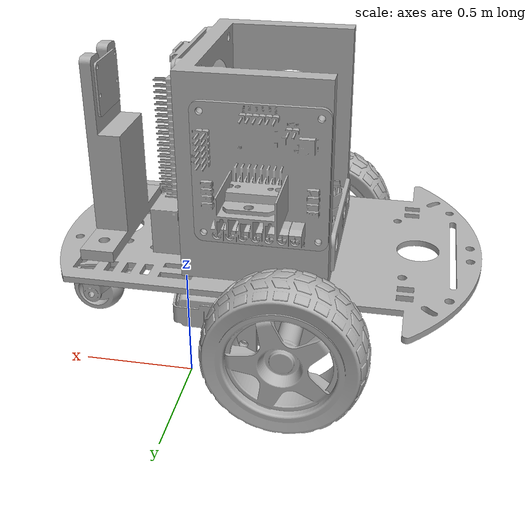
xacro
<?xml version="1.0" ?>
<robot name="car_scale" xmlns:xacro="http://www.ros.org/wiki/xacro">

<xacro:include filename="$(find car_scale_description)/urdf/camera.xacro" />
<xacro:include filename="$(find car_scale_description)/urdf/car_footprint.xacro" />

<xacro:include filename="$(find car_scale_description)/urdf/materials.xacro" />
<xacro:include filename="$(find car_scale_description)/urdf/car_scale.trans" />
<xacro:include filename="$(find car_scale_description)/urdf/car_scale.gazebo" />
<link name="base_link">
  <inertial>
    <origin xyz="-0.3184486651094718 -0.37399381910301716 0.489307364258473" rpy="0 0 0"/>
    <mass value="391.443910992165"/>
    <inertia ixx="36.186873" iyy="96.457366" izz="131.154404" ixy="0.011967" iyz="-0.000188" ixz="0.179255"/>
  </inertial>
  <visual>
    <origin xyz="0 0 0" rpy="0 0 0"/>
    <geometry>
      <mesh filename="file://$(find car_scale_description)/meshes/base_link.stl" scale="0.001 0.001 0.001"/>
    </geometry>
    <material name="silver"/>
  </visual>
  <collision>
    <origin xyz="0 0 0" rpy="0 0 0"/>
    <geometry>
      <mesh filename="file://$(find car_scale_description)/meshes/base_link.stl" scale="0.001 0.001 0.001"/>
    </geometry>
  </collision>
</link>

<link name="base_caster_wheel_1">
  <inertial>
    <origin xyz="-0.11974983374766845 0.14974959040375585 -0.09189950362871724" rpy="0 0 0"/>
    <mass value="14.187470062292778"/>
    <inertia ixx="0.211235" iyy="0.158995" izz="0.33893" ixy="-0.0" iyz="0.0" ixz="-0.0"/>
  </inertial>
  <visual>
    <origin xyz="-0.573077 0.524042 -0.48515" rpy="0 0 0"/>
    <geometry>
      <mesh filename="file://$(find car_scale_description)/meshes/base_caster_wheel_1.stl" scale="0.001 0.001 0.001"/>
    </geometry>
    <material name="silver"/>
  </visual>
  <collision>
    <origin xyz="-0.573077 0.524042 -0.48515" rpy="0 0 0"/>
    <geometry>
      <mesh filename="file://$(find car_scale_description)/meshes/base_caster_wheel_1.stl" scale="0.001 0.001 0.001"/>
    </geometry>
  </collision>
</link>

<link name="middle_caster_wheel_1">
  <inertial>
    <origin xyz="0.0453328380277514 -0.0038973655470143087 -0.07254094379655307" rpy="0 0 0"/>
    <mass value="20.651952587197"/>
    <inertia ixx="0.249149" iyy="0.239992" izz="0.254538" ixy="0.006006" iyz="-0.010258" ixz="0.064877"/>
  </inertial>
  <visual>
    <origin xyz="-0.453327 0.374292 -0.366286" rpy="0 0 0"/>
    <geometry>
      <mesh filename="file://$(find car_scale_description)/meshes/middle_caster_wheel_1.stl" scale="0.001 0.001 0.001"/>
    </geometry>
    <material name="silver"/>
  </visual>
  <collision>
    <origin xyz="-0.453327 0.374292 -0.366286" rpy="0 0 0"/>
    <geometry>
      <mesh filename="file://$(find car_scale_description)/meshes/middle_caster_wheel_1.stl" scale="0.001 0.001 0.001"/>
    </geometry>
  </collision>
</link>

<link name="caster_wheel_1">
  <inertial>
    <origin xyz="-0.005510579030893359 -0.078807714226935 -4.4950142805144644e-07" rpy="0 0 0"/>
    <mass value="3.826079549761852"/>
    <inertia ixx="0.02062" iyy="0.032621" izz="0.020561" ixy="0.000843" iyz="0.0" ixz="0.0"/>
  </inertial>
  <visual>
    <origin xyz="-0.573327 0.289655 -0.166286" rpy="0 0 0"/>
    <geometry>
      <mesh filename="file://$(find car_scale_description)/meshes/caster_wheel_1.stl" scale="0.001 0.001 0.001"/>
    </geometry>
    <material name="silver"/>
  </visual>
  <collision>
    <origin xyz="-0.573327 0.289655 -0.166286" rpy="0 0 0"/>
    <geometry>
      <mesh filename="file://$(find car_scale_description)/meshes/caster_wheel_1.stl" scale="0.001 0.001 0.001"/>
    </geometry>
  </collision>
</link>

<link name="motor_left_1">
  <inertial>
    <origin xyz="0.15579240284676796 0.08553540953199217 0.08475974994155999" rpy="0 0 0"/>
    <mass value="58.91169692781864"/>
    <inertia ixx="0.286332" iyy="0.864358" izz="0.811524" ixy="0.012933" iyz="-6.2e-05" ixz="0.003276"/>
  </inertial>
  <visual>
    <origin xyz="0.271923 0.097042 -0.263872" rpy="0 0 0"/>
    <geometry>
      <mesh filename="file://$(find car_scale_description)/meshes/motor_left_1.stl" scale="0.001 0.001 0.001"/>
    </geometry>
    <material name="silver"/>
  </visual>
  <collision>
    <origin xyz="0.271923 0.097042 -0.263872" rpy="0 0 0"/>
    <geometry>
      <mesh filename="file://$(find car_scale_description)/meshes/motor_left_1.stl" scale="0.001 0.001 0.001"/>
    </geometry>
  </collision>
</link>

<link name="motor_right_1">
  <inertial>
    <origin xyz="0.155792394738778 0.08553540953196681 0.08475976599541013" rpy="0 0 0"/>
    <mass value="58.91169692781868"/>
    <inertia ixx="0.286332" iyy="0.864359" izz="0.811524" ixy="0.012933" iyz="-6.2e-05" ixz="0.003276"/>
  </inertial>
  <visual>
    <origin xyz="0.271923 0.846042 -0.263872" rpy="0 0 0"/>
    <geometry>
      <mesh filename="file://$(find car_scale_description)/meshes/motor_right_1.stl" scale="0.001 0.001 0.001"/>
    </geometry>
    <material name="silver"/>
  </visual>
  <collision>
    <origin xyz="0.271923 0.846042 -0.263872" rpy="0 0 0"/>
    <geometry>
      <mesh filename="file://$(find car_scale_description)/meshes/motor_right_1.stl" scale="0.001 0.001 0.001"/>
    </geometry>
  </collision>
</link>

<link name="axle_right_1">
  <inertial>
    <origin xyz="1.823948703738587e-07 0.09429761228514821 1.1883054118477787e-07" rpy="0 0 0"/>
    <mass value="0.7285931451066853"/>
    <inertia ixx="0.00702" iyy="0.000264" izz="0.007054" ixy="-0.0" iyz="0.0" ixz="-0.0"/>
  </inertial>
  <visual>
    <origin xyz="0.471923 0.846042 -0.351372" rpy="0 0 0"/>
    <geometry>
      <mesh filename="file://$(find car_scale_description)/meshes/axle_right_1.stl" scale="0.001 0.001 0.001"/>
    </geometry>
    <material name="silver"/>
  </visual>
  <collision>
    <origin xyz="0.471923 0.846042 -0.351372" rpy="0 0 0"/>
    <geometry>
      <mesh filename="file://$(find car_scale_description)/meshes/axle_right_1.stl" scale="0.001 0.001 0.001"/>
    </geometry>
  </collision>
</link>

<link name="axle_left_1">
  <inertial>
    <origin xyz="1.823948407864151e-07 -0.09430238771486908 1.1883054085171096e-07" rpy="0 0 0"/>
    <mass value="0.7285931451066853"/>
    <inertia ixx="0.00702" iyy="0.000264" izz="0.007054" ixy="-0.0" iyz="0.0" ixz="-0.0"/>
  </inertial>
  <visual>
    <origin xyz="0.471923 -0.091558 -0.351372" rpy="0 0 0"/>
    <geometry>
      <mesh filename="file://$(find car_scale_description)/meshes/axle_left_1.stl" scale="0.001 0.001 0.001"/>
    </geometry>
    <material name="silver"/>
  </visual>
  <collision>
    <origin xyz="0.471923 -0.091558 -0.351372" rpy="0 0 0"/>
    <geometry>
      <mesh filename="file://$(find car_scale_description)/meshes/axle_left_1.stl" scale="0.001 0.001 0.001"/>
    </geometry>
  </collision>
</link>

<link name="right_wheel_1">
  <inertial>
    <origin xyz="1.9728551642339553e-07 -0.18165888331531144 1.2376875552222444e-07" rpy="0 0 0"/>
    <mass value="21.369378286059046"/>
    <inertia ixx="0.84138" iyy="1.40935" izz="0.841425" ixy="-0.0" iyz="-0.0" ixz="-0.0"/>
  </inertial>
  <visual>
    <origin xyz="0.471923 0.846042 -0.351372" rpy="0 0 0"/>
    <geometry>
      <mesh filename="file://$(find car_scale_description)/meshes/right_wheel_1.stl" scale="0.001 0.001 0.001"/>
    </geometry>
    <material name="silver"/>
  </visual>
  <collision>
    <origin xyz="0.471923 0.846042 -0.351372" rpy="0 0 0"/>
    <geometry>
      <mesh filename="file://$(find car_scale_description)/meshes/right_wheel_1.stl" scale="0.001 0.001 0.001"/>
    </geometry>
  </collision>
</link>

<link name="left_wheel_1">
  <inertial>
    <origin xyz="1.6750421466538157e-07 0.1816580416067999 1.237687540789345e-07" rpy="0 0 0"/>
    <mass value="21.369378286059046"/>
    <inertia ixx="0.84138" iyy="1.40935" izz="0.841425" ixy="-0.0" iyz="0.0" ixz="0.0"/>
  </inertial>
  <visual>
    <origin xyz="0.471923 -0.091558 -0.351372" rpy="0 0 0"/>
    <geometry>
      <mesh filename="file://$(find car_scale_description)/meshes/left_wheel_1.stl" scale="0.001 0.001 0.001"/>
    </geometry>
    <material name="silver"/>
  </visual>
  <collision>
    <origin xyz="0.471923 -0.091558 -0.351372" rpy="0 0 0"/>
    <geometry>
      <mesh filename="file://$(find car_scale_description)/meshes/left_wheel_1.stl" scale="0.001 0.001 0.001"/>
    </geometry>
  </collision>
</link>

<link name="battery_holder_v5_1">
  <inertial>
    <origin xyz="0.0016800208459691879 0.0009869416997400626 0.04269870411993992" rpy="0 0 0"/>
    <mass value="106292559.8420903"/>
    <inertia ixx="4351594.012726" iyy="4371948.874013" izz="8318690.995775" ixy="-9161.859601" iyz="3401.495628" ixz="8167.210252"/>
  </inertial>
  <visual>
    <origin xyz="0.334423 0.374042 -0.55315" rpy="0 0 0"/>
    <geometry>
      <mesh filename="file://$(find car_scale_description)/meshes/battery_holder_v5_1.stl" scale="0.001 0.001 0.001"/>
    </geometry>
    <material name="silver"/>
  </visual>
  <collision>
    <origin xyz="0.334423 0.374042 -0.55315" rpy="0 0 0"/>
    <geometry>
      <mesh filename="file://$(find car_scale_description)/meshes/battery_holder_v5_1.stl" scale="0.001 0.001 0.001"/>
    </geometry>
  </collision>
</link>

<link name="motor_driver_1">
  <inertial>
    <origin xyz="-0.23310400549211002 0.0588667848055746 -0.2975196633074899" rpy="0 0 0"/>
    <mass value="11.312686597182003"/>
    <inertia ixx="0.311147" iyy="0.455367" izz="0.259607" ixy="0.000406" iyz="0.018002" ixz="-0.002885"/>
  </inertial>
  <visual>
    <origin xyz="0.099423 -0.045958 -1.27315" rpy="0 0 0"/>
    <geometry>
      <mesh filename="file://$(find car_scale_description)/meshes/motor_driver_1.stl" scale="0.001 0.001 0.001"/>
    </geometry>
    <material name="silver"/>
  </visual>
  <collision>
    <origin xyz="0.099423 -0.045958 -1.27315" rpy="0 0 0"/>
    <geometry>
      <mesh filename="file://$(find car_scale_description)/meshes/motor_driver_1.stl" scale="0.001 0.001 0.001"/>
    </geometry>
  </collision>
</link>

<link name="base_battery_1">
  <inertial>
    <origin xyz="0.07528439602044376 0.00023994759134682297 0.36926152571412807" rpy="0 0 0"/>
    <mass value="115.26126056974613"/>
    <inertia ixx="21.558117" iyy="15.25677" izz="15.880798" ixy="0.003125" iyz="-0.003641" ixz="-0.463029"/>
  </inertial>
  <visual>
    <origin xyz="0.296923 0.374042 -0.51315" rpy="0 0 0"/>
    <geometry>
      <mesh filename="file://$(find car_scale_description)/meshes/base_battery_1.stl" scale="0.001 0.001 0.001"/>
    </geometry>
    <material name="silver"/>
  </visual>
  <collision>
    <origin xyz="0.296923 0.374042 -0.51315" rpy="0 0 0"/>
    <geometry>
      <mesh filename="file://$(find car_scale_description)/meshes/base_battery_1.stl" scale="0.001 0.001 0.001"/>
    </geometry>
  </collision>
</link>

<link name="raspberry_1">
  <inertial>
    <origin xyz="0.05010062294763944 0.2513108945736187 -0.5363012144017173" rpy="0 0 0"/>
    <mass value="19.7870540474059"/>
    <inertia ixx="1.816485" iyy="1.336536" izz="0.576617" ixy="0.003406" iyz="-0.017501" ixz="0.138475"/>
  </inertial>
  <visual>
    <origin xyz="-0.035577 0.619042 -1.37315" rpy="0 0 0"/>
    <geometry>
      <mesh filename="file://$(find car_scale_description)/meshes/raspberry_1.stl" scale="0.001 0.001 0.001"/>
    </geometry>
    <material name="silver"/>
  </visual>
  <collision>
    <origin xyz="-0.035577 0.619042 -1.37315" rpy="0 0 0"/>
    <geometry>
      <mesh filename="file://$(find car_scale_description)/meshes/raspberry_1.stl" scale="0.001 0.001 0.001"/>
    </geometry>
  </collision>
</link>

<link name="base_camera_1">
  <inertial>
    <origin xyz="0.006164669793814914 -4.2085712453898694e-07 0.28276397732579905" rpy="0 0 0"/>
    <mass value="31.13802766340137"/>
    <inertia ixx="1.738526" iyy="1.384342" izz="0.475699" ixy="0.0" iyz="-0.0" ixz="-0.072073"/>
  </inertial>
  <visual>
    <origin xyz="-0.413158 0.374042 -0.51315" rpy="0 0 0"/>
    <geometry>
      <mesh filename="file://$(find car_scale_description)/meshes/base_camera_1.stl" scale="0.001 0.001 0.001"/>
    </geometry>
    <material name="silver"/>
  </visual>
  <collision>
    <origin xyz="-0.413158 0.374042 -0.51315" rpy="0 0 0"/>
    <geometry>
      <mesh filename="file://$(find car_scale_description)/meshes/base_camera_1.stl" scale="0.001 0.001 0.001"/>
    </geometry>
  </collision>
</link>

<link name="ras_camera_1">
  <inertial>
    <origin xyz="-0.04808730656914956 -0.0006569352980925203 0.021607609045916965" rpy="0 0 0"/>
    <mass value="6.74286978494596"/>
    <inertia ixx="0.049747" iyy="0.027218" izz="0.025635" ixy="2.5e-05" iyz="0.000336" ixz="0.000816"/>
  </inertial>
  <visual>
    <origin xyz="-0.488158 0.374042 -1.18765" rpy="0 0 0"/>
    <geometry>
      <mesh filename="file://$(find car_scale_description)/meshes/ras_camera_1.stl" scale="0.001 0.001 0.001"/>
    </geometry>
    <material name="silver"/>
  </visual>
  <collision>
    <origin xyz="-0.488158 0.374042 -1.18765" rpy="0 0 0"/>
    <geometry>
      <mesh filename="file://$(find car_scale_description)/meshes/ras_camera_1.stl" scale="0.001 0.001 0.001"/>
    </geometry>
  </collision>
</link>

<joint name="Rigid 16" type="fixed">
  <origin xyz="0.573077 -0.524042 0.48515" rpy="0 0 0"/>
  <parent link="base_link"/>
  <child link="base_caster_wheel_1"/>
</joint>

<joint name="base_wheel_joint_1" type="continuous">
  <origin xyz="-0.11975 0.14975 -0.118864" rpy="0 0 0"/>
  <parent link="base_caster_wheel_1"/>
  <child link="middle_caster_wheel_1"/>
  <axis xyz="-0.0 -0.0 -1.0"/>
</joint>

<joint name="base_wheel_joint_2" type="continuous">
  <origin xyz="0.12 0.084637 -0.2" rpy="0 0 0"/>
  <parent link="middle_caster_wheel_1"/>
  <child link="caster_wheel_1"/>
  <axis xyz="-0.069756 -0.997564 -0.0"/>
</joint>

<joint name="Rigid 19" type="fixed">
  <origin xyz="-0.271923 -0.097042 0.263872" rpy="0 0 0"/>
  <parent link="base_link"/>
  <child link="motor_left_1"/>
</joint>

<joint name="Rigid 20" type="fixed">
  <origin xyz="-0.271923 -0.846042 0.263872" rpy="0 0 0"/>
  <parent link="base_link"/>
  <child link="motor_right_1"/>
</joint>

<joint name="right_wheel_joint" type="continuous">
  <origin xyz="-0.2 0.0 0.0875" rpy="0 0 0"/>
  <parent link="motor_right_1"/>
  <child link="axle_right_1"/>
  <axis xyz="-0.0 1.0 0.0"/>
</joint>

<joint name="left_wheel_joint" type="continuous">
  <origin xyz="-0.2 0.1886 0.0875" rpy="0 0 0"/>
  <parent link="motor_left_1"/>
  <child link="axle_left_1"/>
  <axis xyz="-0.0 1.0 -0.0"/>
</joint>

<joint name="Rigid 23" type="fixed">
  <origin xyz="0.0 0.0 0.0" rpy="0 0 0"/>
  <parent link="axle_right_1"/>
  <child link="right_wheel_1"/>
</joint>

<joint name="Rigid 26" type="fixed">
  <origin xyz="0.0 0.0 0.0" rpy="0 0 0"/>
  <parent link="axle_left_1"/>
  <child link="left_wheel_1"/>
</joint>

<joint name="Rigid 32" type="fixed">
  <origin xyz="-0.0375 0.0 0.04" rpy="0 0 0"/>
  <parent link="base_battery_1"/>
  <child link="battery_holder_v5_1"/>
</joint>

<joint name="Rigid 33" type="fixed">
  <origin xyz="0.1975 0.42 0.76" rpy="0 0 0"/>
  <parent link="base_battery_1"/>
  <child link="motor_driver_1"/>
</joint>

<joint name="Rigid 35" type="fixed">
  <origin xyz="-0.296923 -0.374042 0.51315" rpy="0 0 0"/>
  <parent link="base_link"/>
  <child link="base_battery_1"/>
</joint>

<joint name="Rigid 40" type="fixed">
  <origin xyz="0.3325 -0.245 0.86" rpy="0 0 0"/>
  <parent link="base_battery_1"/>
  <child link="raspberry_1"/>
</joint>

<joint name="Rigid 42" type="fixed">
  <origin xyz="0.413158 -0.374042 0.51315" rpy="0 0 0"/>
  <parent link="base_link"/>
  <child link="base_camera_1"/>
</joint>

<joint name="Rigid 45" type="fixed">
  <origin xyz="0.075 0.0 0.6745" rpy="0 0 0"/>
  <parent link="base_camera_1"/>
  <child link="ras_camera_1"/>
</joint>

</robot>

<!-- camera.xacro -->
<robot xmlns:xacro="http://www.ros.org/wiki/xacro">

<link name = "camera_link_optical"/>

<joint name = "camera_optical_joint" type="fixed">
    <origin xyz = "0.15 0 0" rpy ="0 0 0"/>
    <parent link = "ras_camera_1"/>
    <child link="camera_link_optical"/>
</joint>

<gazebo reference ="camera_link_optical">

    <sensor name="camera_sensor" type="camera">
        <camera>
            <horizontal_fov>1.085</horizontal_fov> <!-- 62.2 degrees = 1.085 rad -->
            <image>
                <width>3280</width>
                <height>2464</height>
                <format>R8G8B8</format>
            </image>
            <clip>
                <near>0.01</near> <!-- closer, better for small scenes -->
                <far>100</far>
            </clip>
            <noise>
                <type>gaussian</type>
                <mean>0.0</mean>
                <stddev>0.005</stddev> <!-- Less noise, PiCam is quite clean -->
            </noise>
            <optical_frame_id>camera_link_optical</optical_frame_id>
            <camera_info_topic>camera/camera_info</camera_info_topic>
        </camera>
        <always_on>1</always_on>
        <update_rate>30</update_rate> <!-- 30 FPS -->
        <visualize>true</visualize>
        <topic>camera/image_raw</topic>
    </sensor>
</gazebo>
</robot>

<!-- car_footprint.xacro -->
<robot name="car_scale" xmlns:xacro="http://www.ros.org/wiki/xacro">
<link name="base_footprint" />

<joint name="base_joint" type="fixed">
    <parent link="base_footprint" />
    <child link="base_link" />
    <origin xyz="0 0 0" rpy="0 0 0"/>
</joint>
</robot>

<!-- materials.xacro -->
<robot name="car_scale" xmlns:xacro="http://www.ros.org/wiki/xacro" >

<material name="silver">
  <color rgba="0.700 0.700 0.700 1.000"/>
</material>

</robot>

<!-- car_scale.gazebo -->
<robot name="car_scale" xmlns:xacro="http://www.ros.org/wiki/xacro" >

<xacro:property name="body_color" value="Gazebo/Silver" />
<gazebo>
  <plugin
  filename="ignition-gazebo-joint-state-publisher-system"
  name="ignition::gazebo::systems::JointStatePublisher">
      <joint_name>left_wheel_joint</joint_name>
      <joint_name>right_wheel_joint</joint_name>
      <joint_name>base_wheel_joint_1</joint_name>
      <joint_name>base_wheel_joint_2</joint_name>
  </plugin>
</gazebo>

<gazebo>
  <plugin
      filename="ignition-gazebo-diff-drive-system"
      name="ignition::gazebo::systems::DiffDrive">
      <left_joint>left_wheel_joint</left_joint>
      <right_joint>right_wheel_joint</right_joint>
      <wheel_separation>1.4</wheel_separation>
      <wheel_radius>0.66</wheel_radius>
      <frame_id>odom</frame_id>
      <child_frame_id>base_footprint</child_frame_id>
  </plugin>
</gazebo>

<gazebo reference="middle_caster_wheel_1">
  <material>${body_color}</material>
  <mu1>0.2</mu1>
  <mu2>0.2</mu2>
  <self_collide>true</self_collide>
</gazebo>

<gazebo reference="caster_wheel_1">
  <material>${body_color}</material>
  <mu1>0.2</mu1>
  <mu2>0.2</mu2>
  <self_collide>true</self_collide>
</gazebo>

<gazebo reference="left_wheel_1">
  <material>${body_color}</material>
  <mu1>0.2</mu1>
  <mu2>0.2</mu2>
  <self_collide>true</self_collide>
</gazebo>

<gazebo reference="right_wheel_1">
  <material>${body_color}</material>
  <mu1>0.2</mu1>
  <mu2>0.2</mu2>
  <self_collide>true</self_collide>
</gazebo>

</robot>
